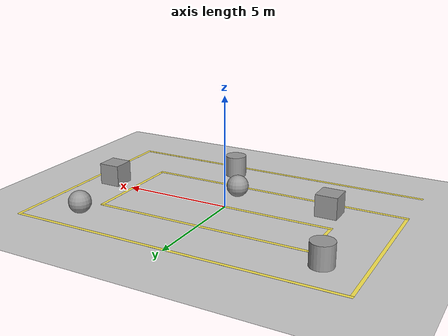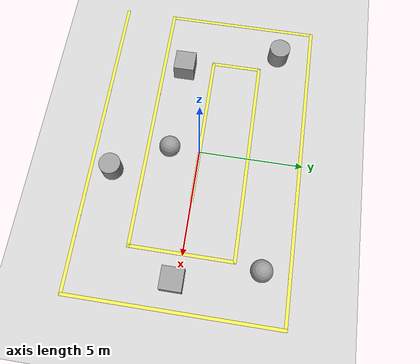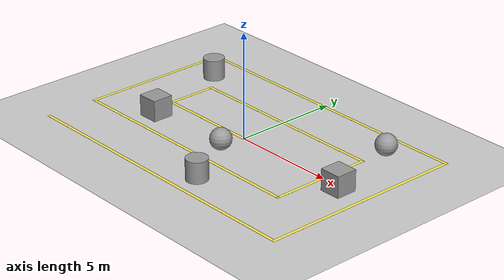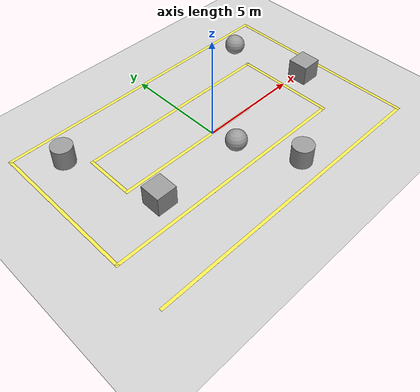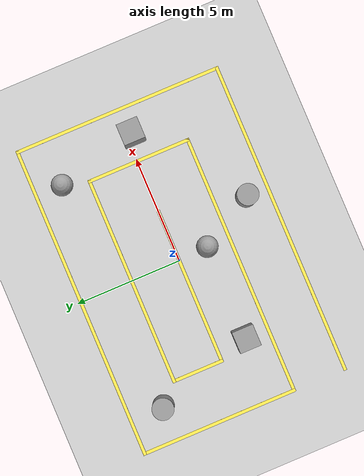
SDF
<sdf version="1.7">
 <world name="default">
  <light name="sun" type="directional">
   <pose>0 0 10 0 -0 0</pose>
   <diffuse>0.8 0.8 0.8 1</diffuse>
   <specular>0.2 0.2 0.2 1</specular>
   <attenuation>
    <range>1000</range>
    <constant>0.9</constant>
    <linear>0.01</linear>
    <quadratic>0.001</quadratic>
   </attenuation>
   <direction>-0.5 0.1 -0.9</direction>
   <spot><inner_angle>0</inner_angle><outer_angle>0</outer_angle><falloff>0</falloff></spot>
  </light>
  <model name="ground_plane">
   <static>1</static>
   <link name="link">
    <collision name="collision">
     <geometry><plane><normal>0 0 1</normal><size>100 100</size></plane></geometry>
     <surface><friction><ode><mu>100</mu><mu2>50</mu2></ode></friction></surface>
    </collision>
    <visual name="visual">
     <cast_shadows>0</cast_shadows>
     <geometry><plane><normal>0 0 1</normal><size>100 100</size></plane></geometry>
     <material>
      <script><uri>file://media/materials/scripts/gazebo.material</uri><name>Gazebo/Grey</name></script>
     </material>
    </visual>
   </link>
  </model>
  <gravity>0 0 -9.8</gravity>
  <magnetic_field>6e-06 2.3e-05 -4.2e-05</magnetic_field>
  <atmosphere type="adiabatic"/>
  <physics type="ode">
   <max_step_size>0.001</max_step_size>
   <real_time_factor>1</real_time_factor>
   <real_time_update_rate>1000</real_time_update_rate>
  </physics>
  <scene><ambient>0.4 0.4 0.4 1</ambient><background>0.7 0.7 0.7 1</background><shadows>1</shadows></scene>
  <spherical_coordinates>
   <surface_model>EARTH_WGS84</surface_model>
   <latitude_deg>0</latitude_deg>
   <longitude_deg>0</longitude_deg>
   <elevation>0</elevation>
   <heading_deg>0</heading_deg>
  </spherical_coordinates>
  <model name="sari_yol">
   <pose>-0.006379 -0.071083 0 0 -0 0</pose>
   <link name="Wall_16">
    <collision name="Wall_16_Collision">
     <geometry><box><size>15 0.15 0.001</size></box></geometry>
     <pose>0 0 0.0005 0 -0 0</pose>
    </collision>
    <visual name="Wall_16_Visual">
     <pose>0 0 0.0005 0 -0 0</pose>
     <geometry><box><size>15 0.15 0.001</size></box></geometry>
     <material>
      <script><uri>file://media/materials/scripts/gazebo.material</uri><name>Gazebo/Grey</name></script>
      <ambient>0.988235 0.913725 0.309804 1</ambient>
     </material>
     <meta><layer>0</layer></meta>
    </visual>
    <pose>0 -4.925 0 0 -0 0</pose>
   </link>
   <link name="Wall_17">
    <collision name="Wall_17_Collision">
     <geometry><box><size>10 0.15 0.001</size></box></geometry>
     <pose>0 0 0.0005 0 -0 0</pose>
    </collision>
    <visual name="Wall_17_Visual">
     <pose>0 0 0.0005 0 -0 0</pose>
     <geometry><box><size>10 0.15 0.001</size></box></geometry>
     <material>
      <script><uri>file://media/materials/scripts/gazebo.material</uri><name>Gazebo/Grey</name></script>
      <ambient>0.988235 0.913725 0.309804 1</ambient>
     </material>
     <meta><layer>0</layer></meta>
    </visual>
    <pose>7.425 -0 0 0 -0 1.5708</pose>
   </link>
   <link name="Wall_18">
    <collision name="Wall_18_Collision">
     <geometry><box><size>15 0.15 0.001</size></box></geometry>
     <pose>0 0 0.0005 0 -0 0</pose>
    </collision>
    <visual name="Wall_18_Visual">
     <pose>0 0 0.0005 0 -0 0</pose>
     <geometry><box><size>15 0.15 0.001</size></box></geometry>
     <material>
      <script><uri>file://media/materials/scripts/gazebo.material</uri><name>Gazebo/Grey</name></script>
      <ambient>0.988235 0.913725 0.309804 1</ambient>
     </material>
     <meta><layer>0</layer></meta>
    </visual>
    <pose>0 4.925 0 0 -0 3.14159</pose>
   </link>
   <link name="Wall_19">
    <collision name="Wall_19_Collision">
     <geometry><box><size>7.5 0.15 0.001</size></box></geometry>
     <pose>0 0 0.0005 0 -0 0</pose>
    </collision>
    <visual name="Wall_19_Visual">
     <pose>0 0 0.0005 0 -0 0</pose>
     <geometry><box><size>7.5 0.15 0.001</size></box></geometry>
     <material>
      <script><uri>file://media/materials/scripts/gazebo.material</uri><name>Gazebo/Grey</name></script>
      <ambient>0.988235 0.913725 0.309804 1</ambient>
     </material>
     <meta><layer>0</layer></meta>
    </visual>
    <pose>-7.425 1.25 0 0 -0 -1.5708</pose>
   </link>
   <link name="Wall_20">
    <collision name="Wall_20_Collision">
     <geometry><box><size>12.5 0.15 0.001</size></box></geometry>
     <pose>0 0 0.0005 0 -0 0</pose>
    </collision>
    <visual name="Wall_20_Visual">
     <pose>0 0 0.0005 0 -0 0</pose>
     <geometry><box><size>12.5 0.15 0.001</size></box></geometry>
     <material>
      <script><uri>file://media/materials/scripts/gazebo.material</uri><name>Gazebo/Grey</name></script>
      <ambient>0.988235 0.913725 0.309804 1</ambient>
     </material>
     <meta><layer>0</layer></meta>
    </visual>
    <pose>-1.25 -2.425 0 0 -0 0</pose>
   </link>
   <link name="Wall_21">
    <collision name="Wall_21_Collision">
     <geometry><box><size>5 0.15 0.001</size></box></geometry>
     <pose>0 0 0.0005 0 -0 0</pose>
    </collision>
    <visual name="Wall_21_Visual">
     <pose>0 0 0.0005 0 -0 0</pose>
     <geometry><box><size>5 0.15 0.001</size></box></geometry>
     <material>
      <script><uri>file://media/materials/scripts/gazebo.material</uri><name>Gazebo/Grey</name></script>
      <ambient>0.988235 0.913725 0.309804 1</ambient>
     </material>
     <meta><layer>0</layer></meta>
    </visual>
    <pose>4.925 -0 0 0 -0 1.5708</pose>
   </link>
   <link name="Wall_22">
    <collision name="Wall_22_Collision">
     <geometry><box><size>10 0.15 0.001</size></box></geometry>
     <pose>0 0 0.0005 0 -0 0</pose>
    </collision>
    <visual name="Wall_22_Visual">
     <pose>0 0 0.0005 0 -0 0</pose>
     <geometry><box><size>10 0.15 0.001</size></box></geometry>
     <material>
      <script><uri>file://media/materials/scripts/gazebo.material</uri><name>Gazebo/Grey</name></script>
      <ambient>0.988235 0.913725 0.309804 1</ambient>
     </material>
     <meta><layer>0</layer></meta>
    </visual>
    <pose>0 2.425 0 0 -0 3.14159</pose>
   </link>
   <link name="Wall_23">
    <collision name="Wall_23_Collision">
     <geometry><box><size>2.5 0.15 0.001</size></box></geometry>
     <pose>0 0 0.0005 0 -0 0</pose>
    </collision>
    <visual name="Wall_23_Visual">
     <pose>0 0 0.0005 0 -0 0</pose>
     <geometry><box><size>2.5 0.15 0.001</size></box></geometry>
     <material>
      <script><uri>file://media/materials/scripts/gazebo.material</uri><name>Gazebo/Grey</name></script>
      <ambient>0.988235 0.913725 0.309804 1</ambient>
     </material>
     <meta><layer>0</layer></meta>
    </visual>
    <pose>-4.925 1.25 0 0 -0 -1.5708</pose>
   </link>
   <link name="Wall_24">
    <collision name="Wall_24_Collision">
     <geometry><box><size>7.5 0.15 0.001</size></box></geometry>
     <pose>0 0 0.0005 0 -0 0</pose>
    </collision>
    <visual name="Wall_24_Visual">
     <pose>0 0 0.0005 0 -0 0</pose>
     <geometry><box><size>7.5 0.15 0.001</size></box></geometry>
     <material>
      <script><uri>file://media/materials/scripts/gazebo.material</uri><name>Gazebo/Grey</name></script>
      <ambient>0.988235 0.913725 0.309804 1</ambient>
     </material>
     <meta><layer>0</layer></meta>
    </visual>
    <pose>-1.25 0.075 0 0 -0 0</pose>
   </link>
   <static>1</static>
  </model>
  <model name="unit_box">
   <pose>6.12061 -0.249699 0.499995 -1e-05 -0 -0</pose>
   <link name="link">
    <inertial>
     <mass>1</mass>
     <inertia>
      <ixx>0.166667</ixx>
      <ixy>0</ixy>
      <ixz>0</ixz>
      <iyy>0.166667</iyy>
      <iyz>0</iyz>
      <izz>0.166667</izz>
     </inertia>
    </inertial>
    <collision name="collision"><geometry><box><size>1 1 1</size></box></geometry></collision>
    <visual name="visual">
     <geometry><box><size>1 1 1</size></box></geometry>
     <material>
      <script><name>Gazebo/Grey</name><uri>file://media/materials/scripts/gazebo.material</uri></script>
     </material>
    </visual>
   </link>
  </model>
  <model name="unit_box_0">
   <pose>-4.34305 -1.38114 0.499995 0 1e-05 0</pose>
   <link name="link">
    <inertial>
     <mass>1</mass>
     <inertia>
      <ixx>0.166667</ixx>
      <ixy>0</ixy>
      <ixz>0</ixz>
      <iyy>0.166667</iyy>
      <iyz>0</iyz>
      <izz>0.166667</izz>
     </inertia>
    </inertial>
    <collision name="collision"><geometry><box><size>1 1 1</size></box></geometry></collision>
    <visual name="visual">
     <geometry><box><size>1 1 1</size></box></geometry>
     <material>
      <script><name>Gazebo/Grey</name><uri>file://media/materials/scripts/gazebo.material</uri></script>
     </material>
    </visual>
   </link>
  </model>
  <model name="unit_cylinder">
   <pose>-5.74919 3.22018 0.499998 3e-06 -4e-06 0</pose>
   <link name="link">
    <inertial>
     <mass>1</mass>
     <inertia><ixx>0.145833</ixx><ixy>0</ixy><ixz>0</ixz><iyy>0.145833</iyy><iyz>0</iyz><izz>0.125</izz></inertia>
    </inertial>
    <collision name="collision">
     <geometry><cylinder><radius>0.5</radius><length>1</length></cylinder></geometry>
    </collision>
    <visual name="visual">
     <geometry><cylinder><radius>0.5</radius><length>1</length></cylinder></geometry>
     <material>
      <script><name>Gazebo/Grey</name><uri>file://media/materials/scripts/gazebo.material</uri></script>
     </material>
    </visual>
   </link>
  </model>
  <model name="unit_cylinder_0">
   <pose>1.50781 -3.9325 0.499992 -3e-06 -4e-06 -0</pose>
   <link name="link">
    <inertial>
     <mass>1</mass>
     <inertia><ixx>0.145833</ixx><ixy>0</ixy><ixz>0</ixz><iyy>0.145833</iyy><iyz>0</iyz><izz>0.125</izz></inertia>
    </inertial>
    <collision name="collision">
     <geometry><cylinder><radius>0.5</radius><length>1</length></cylinder></geometry>
    </collision>
    <visual name="visual">
     <geometry><cylinder><radius>0.5</radius><length>1</length></cylinder></geometry>
     <material>
      <script><name>Gazebo/Grey</name><uri>file://media/materials/scripts/gazebo.material</uri></script>
     </material>
    </visual>
   </link>
  </model>
  <model name="unit_sphere">
   <pose>5.17031 3.52426 0.5 0 -0 0</pose>
   <link name="link">
    <inertial>
     <mass>1</mass>
     <inertia><ixx>0.1</ixx><ixy>0</ixy><ixz>0</ixz><iyy>0.1</iyy><iyz>0</iyz><izz>0.1</izz></inertia>
    </inertial>
    <collision name="collision"><geometry><sphere><radius>0.5</radius></sphere></geometry></collision>
    <visual name="visual">
     <geometry><sphere><radius>0.5</radius></sphere></geometry>
     <material>
      <script><name>Gazebo/Grey</name><uri>file://media/materials/scripts/gazebo.material</uri></script>
     </material>
    </visual>
   </link>
  </model>
  <model name="unit_sphere_0">
   <pose>0.092603 -1.39849 0.5 0 -0 0</pose>
   <link name="link">
    <inertial>
     <mass>1</mass>
     <inertia><ixx>0.1</ixx><ixy>0</ixy><ixz>0</ixz><iyy>0.1</iyy><iyz>0</iyz><izz>0.1</izz></inertia>
    </inertial>
    <collision name="collision"><geometry><sphere><radius>0.5</radius></sphere></geometry></collision>
    <visual name="visual">
     <geometry><sphere><radius>0.5</radius></sphere></geometry>
     <material>
      <script><name>Gazebo/Grey</name><uri>file://media/materials/scripts/gazebo.material</uri></script>
     </material>
    </visual>
   </link>
  </model>
 </world>
</sdf>
